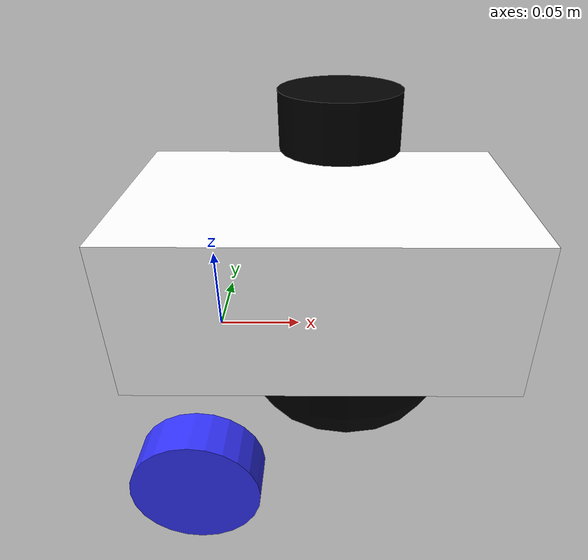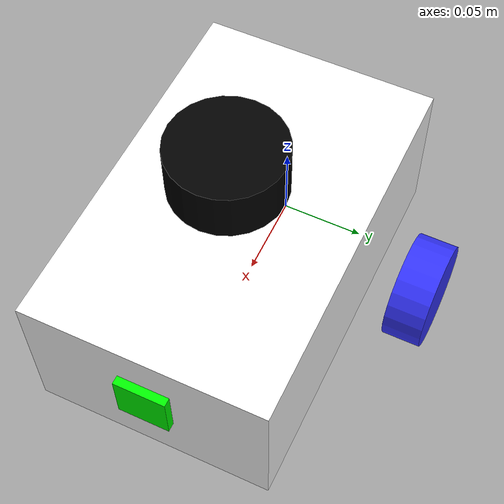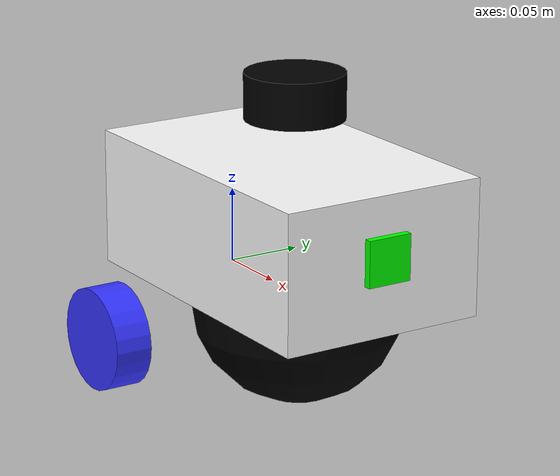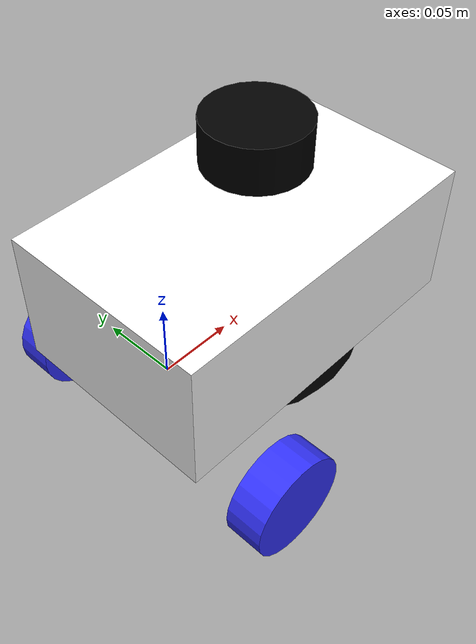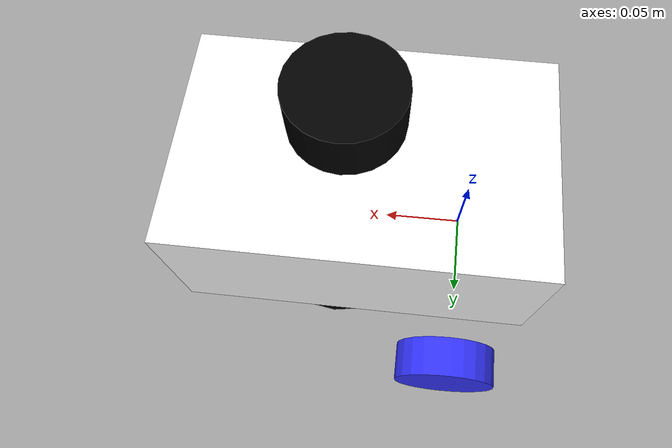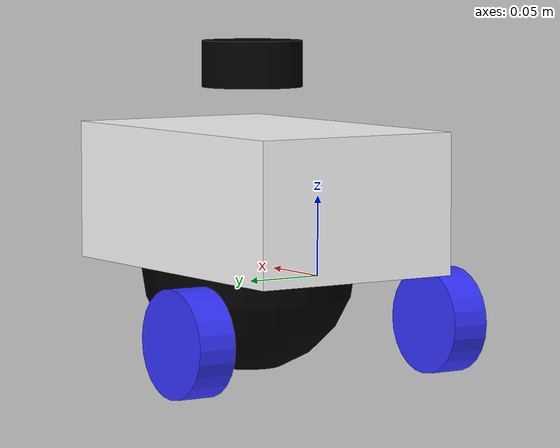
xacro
<?xml version="1.0"?>
<robot xmlns:xacro="http://www.ros.org/wiki/xacro"  name="robot">

    <xacro:arg name="use_ros2_control" default="true"/>
    <xacro:arg name="sim_mode" default="false"/>

    <xacro:include filename="robot_core.xacro" />

    <xacro:if value="$(arg use_ros2_control)">
        <xacro:include filename="ros2_control.xacro" />
    </xacro:if>
    <xacro:unless value="$(arg use_ros2_control)">
        <xacro:include filename="gazebo_control.xacro" />
    </xacro:unless>

    <xacro:include filename="lidar.xacro"/>

    <xacro:include filename="camera.xacro"/>

</robot>

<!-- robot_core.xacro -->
<robot xmlns:xacro="http://www.ros.org/wiki/xacro">

    <xacro:include filename="inertial_macros.xacro"/>

    <material name="white">
        <color rgba="1 1 1 1"/>
    </material>

    <material name="orange">
        <color rgba="1 0.3 0.1 1"/>
    </material>

    <material name="blue">
        <color rgba="0.2 0.2 1 1"/>
    </material>

    <material name="black">
        <color rgba="0 0 0 1"/>
    </material>

    <material name="green">
        <color rgba="0 1 0 1"/>
    </material>

    <!-- BASE LINK-->
    <!-- base link origin centre point between two wheels -->
    <link name="base_link">

    </link>

    <!-- BASE_FOOTPRINT LINK -->
    <!-- Some nodes expect a base_footprint frame which should be the same as base_link except sitting on the floor. I just made it equal to base_link -->

    <joint name="base_footprint_joint" type="fixed">
        <parent link="base_link"/>
        <child link="base_footprint"/>
        <origin xyz="0 0 0" rpy="0 0 0"/>
    </joint>

    <link name="base_footprint">
    </link>

    <!-- CHASSIS LINK -->
    <joint name="chassis_joint" type="fixed">
        <parent link="base_link"/>
        <child link="chassis" />
        <origin xyz ="-0.045 0 0"/>
    </joint>

    <link name="chassis">
        <visual>
            <origin xyz="0.11 0 0.045"/> <!-- by default, chassis origin is in the centre, so shift it  forward by half in x and up by half in z-->
            <geometry>
                <box size="0.22 0.14 0.09"/>
            </geometry>
            <material name="white"/>
        </visual>
        <collision>
            <origin xyz="0.11 0 0.045"/> <!-- by default, chassis origin is in the centre, so shift it  forward by half in x and up by half in z-->
            <geometry>
                <box size="0.22 0.14 0.09"/>
            </geometry>
        </collision>
        <xacro:inertial_box mass="0.75" x="0.22" y="0.14" z="0.09">
            <origin xyz="0.11 0 0.045" rpy="0 0 0 "/>
        </xacro:inertial_box>
    </link>

    <gazebo reference="chassis">
        <material>Gazebo/White</material>
    </gazebo>

    <!-- LEFT WHEEL LINK -->
    <joint name = "left_wheel_joint" type="continuous">
        <parent link="base_link"/>
        <child link = "left_wheel"/>
        <origin xyz="0 0.095 -0.035" rpy="-${pi/2} 0 0"/> <!-- The left wheel is 0.1m left and 0.035m below the base link origin, and rotated to be on its side-->
        <axis xyz="0 0 1"/> <!-- Forward rotation is positive around z axis-->
    </joint>

    <link name = "left_wheel">
        <visual>
            <geometry>
                <cylinder radius="0.034" length="0.025"/>
            </geometry>
            <material name="blue"/>
        </visual>
        <collision>
            <geometry>
                <sphere radius="0.034"/>
            </geometry>
        </collision>
        <xacro:inertial_cylinder mass="0.1" length="0.025" radius="0.034">
            <origin xyz="0 0 0" rpy="0 0 0"/>
        </xacro:inertial_cylinder>
    </link>

    <gazebo reference="left_wheel">
        <material>Gazebo/Blue</material>
    </gazebo>

    <!-- RIGHT WHEEL LINK -->
    <joint name = "right_wheel_joint" type="continuous">
        <parent link="base_link"/>
        <child link = "right_wheel"/>
        <origin xyz="0 -0.095 -0.035" rpy="${pi/2} 0 0"/> <!-- The left wheel is 0.1m left and 0.035m below the base link origin, and rotated to be on its side-->
        <axis xyz="0 0 -1"/> <!-- Forward rotation is positive around -z axis-->
    </joint>

    <link name = "right_wheel">
        <visual>
            <geometry>
                <cylinder radius="0.034" length="0.025"/>
            </geometry>
            <material name="blue"/>
        </visual>
        <collision>
            <geometry>
                <sphere radius="0.034"/>
            </geometry>
        </collision>
        <xacro:inertial_cylinder mass="0.1" length="0.025" radius="0.034">
            <origin xyz="0 0 0" rpy="0 0 0"/>
        </xacro:inertial_cylinder>
    </link>

    <gazebo reference="right_wheel">
        <material>Gazebo/Blue</material>
    </gazebo>

    <!-- CASTER WHEEL LINK -->

    <joint name="caster_wheel_joint" type="fixed">
        <parent link="chassis"/>
        <child link="caster_wheel"/>
        <origin xyz="0.125 0 0"/>
    </joint>

    <link name="caster_wheel">
        <visual>
            <geometry>
                <sphere radius="0.07"/>
            </geometry>
            <material name="black"/>
        </visual>
        <collision>
            <geometry>
                <sphere radius="0.07"/>
            </geometry>
        </collision>
        <xacro:inertial_sphere mass="0.1" radius="0.07">
            <origin xyz="0 0 0" rpy="0 0 0"/>
        </xacro:inertial_sphere>
    </link>

    <gazebo reference="caster_wheel">
        <material>Gazebo/Black</material>
        <mu1 value="0.001"/>
        <mu2 value="0.001"/>
    </gazebo>

</robot>

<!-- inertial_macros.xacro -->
<robot xmlns:xacro="http://www.ros.org/wiki/xacro"  name="robot">

    <xacro:macro name="inertial_sphere" params="mass radius *origin">
        <inertial>
            <xacro:insert_block name="origin"/>
            <mass value="${mass}" />
            <inertia ixx="${(2/5) * mass * (radius*radius)}" ixy="0.0" ixz="0.0"
                    iyy="${(2/5) * mass * (radius*radius)}" iyz="0.0"
                    izz="${(2/5) * mass * (radius*radius)}" />
        </inertial>
    </xacro:macro>

    <xacro:macro name="inertial_box" params="mass x y z *origin">
        <inertial>
            <xacro:insert_block name="origin"/>
            <mass value="${mass}" />
            <inertia ixx="${(1/12) * mass * (y*y+z*z)}" ixy="0.0" ixz="0.0"
                    iyy="${(1/12) * mass * (x*x+z*z)}" iyz="0.0"
                    izz="${(1/12) * mass * (x*x+y*y)}" />
        </inertial>
    </xacro:macro>

    <xacro:macro name="inertial_cylinder" params="mass length radius *origin">
        <inertial>
            <xacro:insert_block name="origin"/>
            <mass value="${mass}" />
            <inertia ixx="${(1/12) * mass * (3*radius*radius + length*length)}" ixy="0.0" ixz="0.0"
                    iyy="${(1/12) * mass * (3*radius*radius + length*length)}" iyz="0.0"
                    izz="${(1/2) * mass * (radius*radius)}" />
        </inertial>
    </xacro:macro>

</robot>

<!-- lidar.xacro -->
<robot xmlns:xacro="http://www.ros.org/wiki/xacro"  name="robot">

    <!-- Create the lidar joint -->
    <joint name="laser_joint" type="fixed">
        <parent link="chassis"/>
        <child link ="laser_frame"/>
        <origin xyz="0.12 0 0.13" rpy="0 0 0"/> <!--The Lidar is 12cm in front of the chassis origin and 13 cm up-->
    </joint>

    <!-- Create the lidar frame -->
    <link name="laser_frame" type="fixed">
        <visual>
            <geometry>
                <cylinder radius="0.0325" length="0.03"/>
            </geometry>
            <material name="black"/>
        </visual>
        <collision>
            <geometry>
                <cylinder radius="0.034" length="0.025"/>
            </geometry>
        </collision>
        <xacro:inertial_cylinder mass="0.1" length="0.025" radius="0.034">
            <origin xyz="0 0 0" rpy="0 0 0"/>
        </xacro:inertial_cylinder>
    </link>

    <!-- A Gazebo tag associated with the laser frame link -->
    <gazebo reference="laser_frame">
        <material>Gazebo/Black</material>

        <sensor name="laser" type="ray"> <!-- A simulated Ray sensor in Gazebo -->
            <pose> 0 0 0 0 0 0 </pose> <!-- Sensor is centred in link -->
            <visualize>false</visualize>
            <update_rate>10</update_rate>
            <ray> <!-- Parameters for the sensor -->
                <scan>
                    <horizontal>
                        <samples>360</samples>
                        <min_angle>-3.14</min_angle>
                        <max_angle>3.14</max_angle>
                    </horizontal>
                </scan>
                <range>
                    <min>0.15</min>
                    <max>12</max>
                </range>
            </ray>
            <plugin name="laser_controller" filename="libgazebo_ros_ray_sensor.so">
                <ros>
                    <argument>~/out:=scan</argument> <!-- The Topic we want to publish to-->
                </ros>
                <output_type>sensor_msgs/LaserScan</output_type> <!-- The type of message we want to publish-->
                <frame_name>laser_frame</frame_name> <!-- What frame name to put in laser scan mesage -->
            </plugin>
        </sensor>
    </gazebo>

</robot>

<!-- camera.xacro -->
<robot xmlns:xacro="http://www.ros.org/wiki/xacro"  name="robot">

    <!-- Create the camera joint -->
    <joint name="camera_joint" type="fixed">
        <parent link="chassis"/>
        <child link ="camera_link"/>
        <origin xyz="0.22 0 0.05" rpy="0 0 0"/> <!--The camera is 22cm in front of the chassis origin and 5 cm up-->
    </joint>

    <!-- Create the camera frame -->
    <link name="camera_link" type="fixed">
        <visual>
            <geometry>
                <box size="0.010 0.03 0.03"/>
            </geometry>
            <material name="green"/>
        </visual>
    </link>

    <!-- Create the joint to convert from ROS coordinate system to standard vision coordinate system -->
    <joint name="camera_optical_joint" type="fixed">
        <parent link="camera_link"/>
        <child link ="camera_link_optical"/>
        <origin xyz="0 0 0" rpy="${-pi/2 + pi} 0 ${-pi/2}"/> <!--roll, and yaw need to be rotated by pi/2 to make optical link xyz match with ros standards. Add extra pi on roll because my camera is mounted upside down.-->
    </joint>

    <!-- Create the camera frame -->
    <link name="camera_link_optical"></link>

    <!-- A Gazebo tag associated with the laser frame link -->
    <gazebo reference="camera_link">
        <material>Gazebo/Green</material>

        <sensor name="camera" type="camera">
            <pose> 0 0 0 0 0 0 </pose>
            <visualize>true</visualize>
            <update_rate>10</update_rate>
            <camera>
                <horizontal_fov>1.089</horizontal_fov>
                <image>
                    <format>R8G8B8</format>
                    <width>640</width>
                    <height>480</height>
                </image>
                <clip>
                    <near>0.05</near>
                    <far>8.0</far>
                </clip>
            </camera>
            <plugin name="camera_controller" filename="libgazebo_ros_camera.so">
                <frame_name>camera_link_optical</frame_name>
            </plugin>
        </sensor>

    </gazebo>
</robot>
